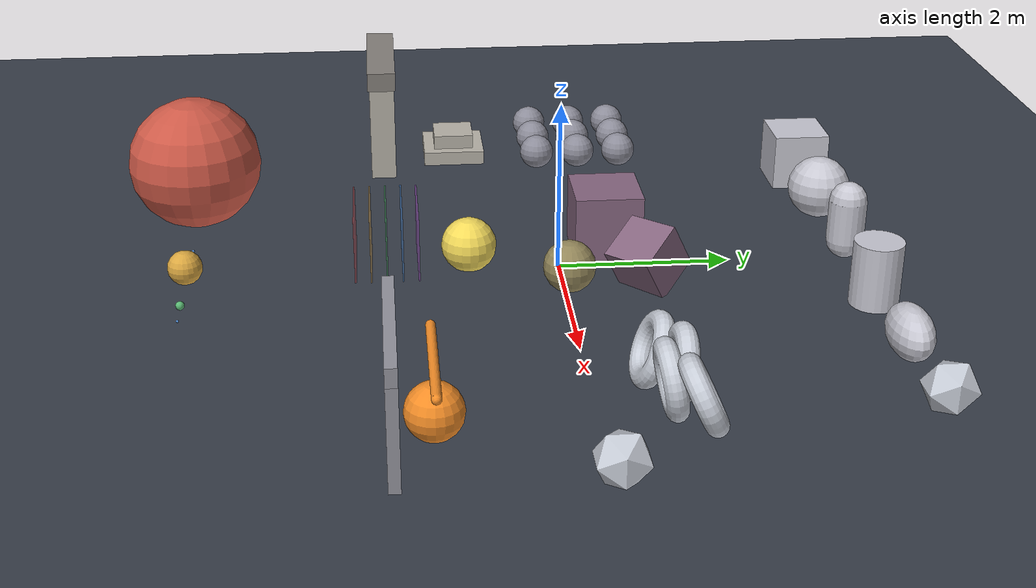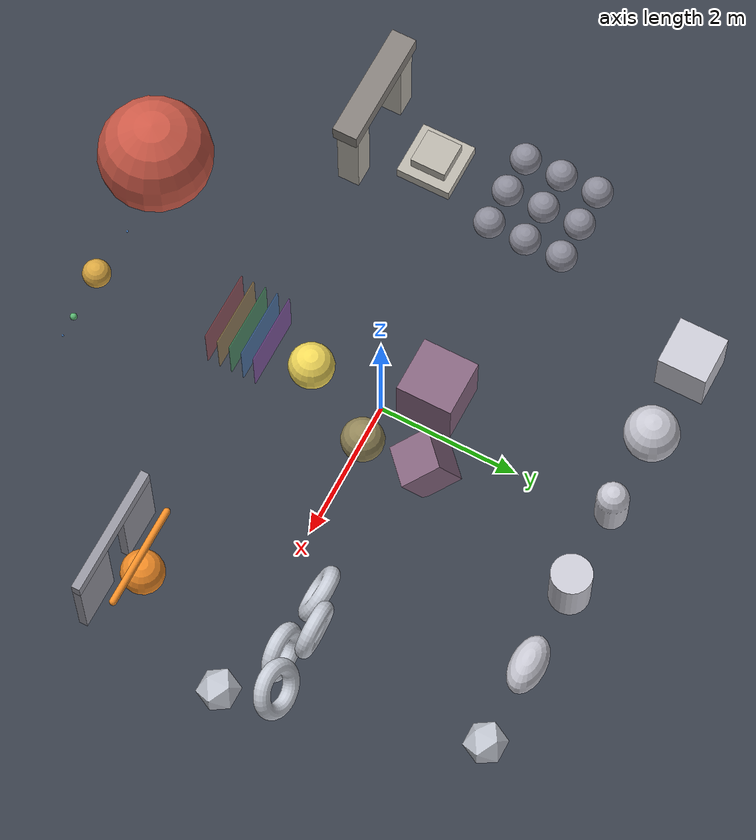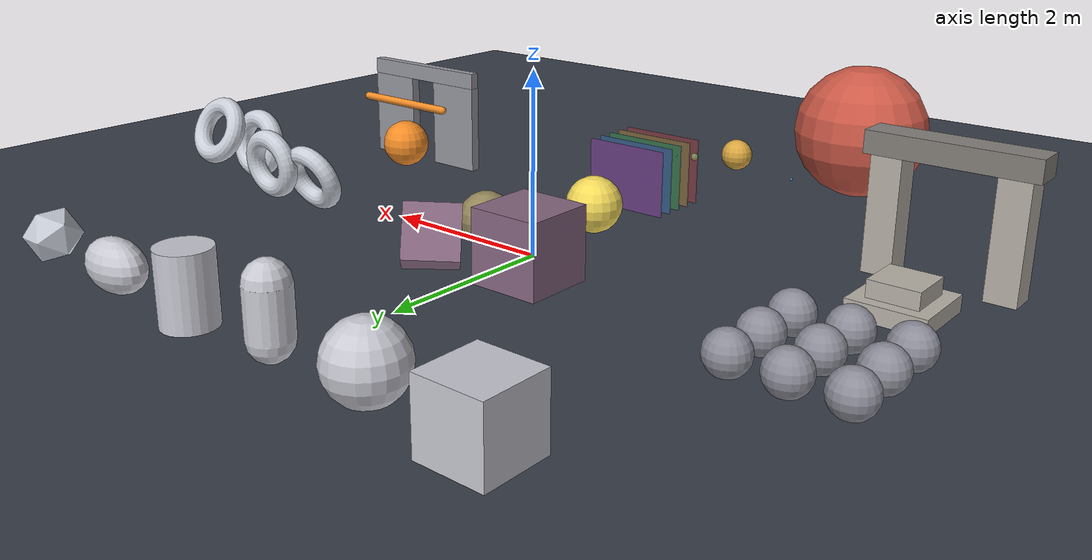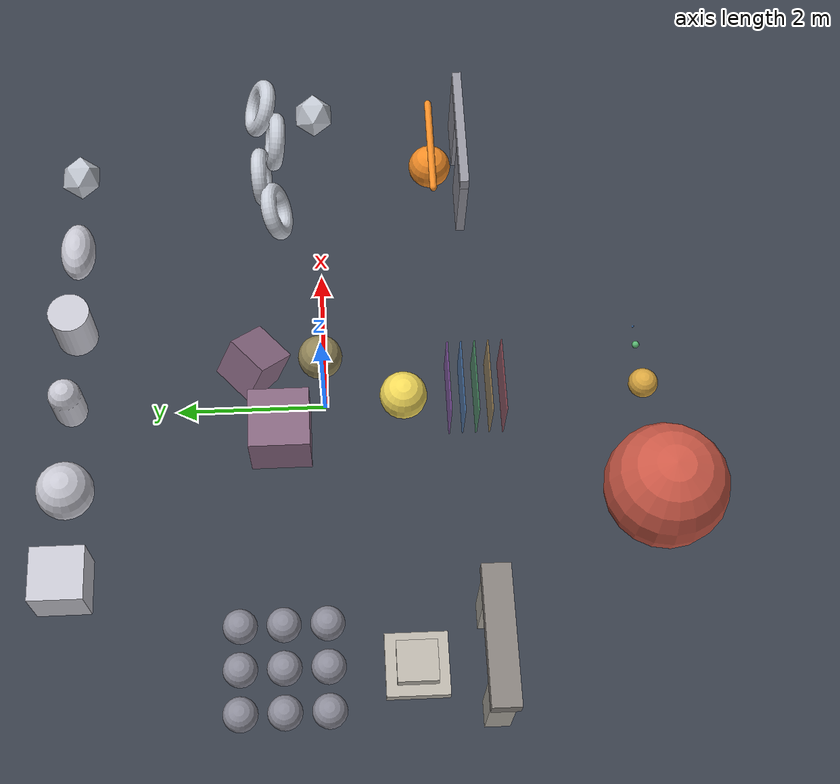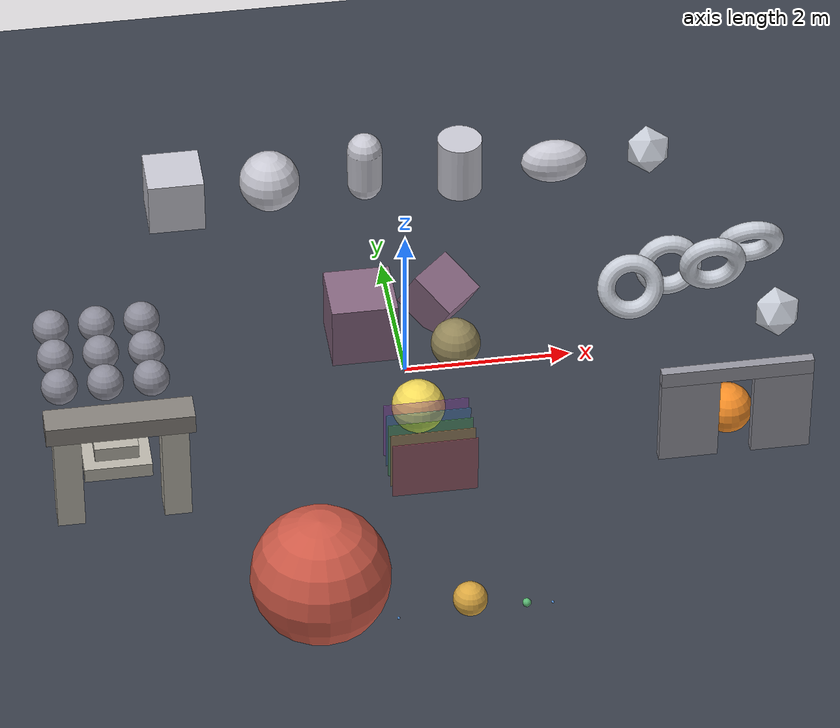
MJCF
<mujoco model="showcase">
  <compiler angle="degree" autolimits="true"/>

  <visual>
    <headlight ambient="0.20 0.20 0.20" diffuse="0.35 0.35 0.35" specular="0.4 0.4 0.4"/>
    <quality shadowsize="4096" numslices="32" numstacks="16" numquads="4"/>
    <map znear="0.01" zfar="120" shadowclip="1.5" shadowscale="0.5"/>
  </visual>

  <asset>
    <texture name="grid" type="2d" builtin="checker" width="512" height="512"
             rgb1="0.17 0.19 0.23" rgb2="0.26 0.29 0.34"/>
    <material name="grid" texture="grid" texrepeat="1 1" texuniform="true" reflectance="0.1"/>

    <texture name="cubetex" type="cube" builtin="checker" width="256" height="256"
             rgb1="0.85 0.35 0.25" rgb2="0.20 0.45 0.75" mark="edge" markrgb="0.95 0.95 0.95"/>
    <material name="cube_mat" texture="cubetex" texuniform="false" specular="0.4"
              shininess="0.5"/>
    <texture name="flat2d" type="2d" builtin="checker" width="256" height="256"
             rgb1="0.90 0.75 0.30" rgb2="0.25 0.30 0.40"/>
    <material name="flat2d" texture="flat2d" texrepeat="4 2" specular="0.3" shininess="0.4"/>

    <material name="pale" rgba="0.78 0.78 0.82 1" specular="0.4" shininess="0.5"/>
    <material name="chrome" rgba="0.78 0.80 0.84 1" specular="0.95" shininess="0.92"/>
    <material name="stone" rgba="0.72 0.70 0.66 1" specular="0.1" shininess="0.2"/>
    <material name="stone_dark" rgba="0.52 0.50 0.48 1" specular="0.1" shininess="0.2"/>
    <material name="wall" rgba="0.58 0.58 0.62 1" specular="0.15" shininess="0.25"/>
    <material name="hidden" rgba="0.95 0.55 0.15 1" specular="0.6" shininess="0.7"/>

    <material name="b_spec_0" rgba="0.55 0.55 0.60 1" specular="0.0" shininess="0.5"/>
    <material name="b_spec_1" rgba="0.55 0.55 0.60 1" specular="0.5" shininess="0.5"/>
    <material name="b_spec_2" rgba="0.55 0.55 0.60 1" specular="1.0" shininess="0.5"/>
    <material name="b_shin_0" rgba="0.55 0.55 0.60 1" specular="1.0" shininess="0.05"/>
    <material name="b_shin_1" rgba="0.55 0.55 0.60 1" specular="1.0" shininess="0.5"/>
    <material name="b_shin_2" rgba="0.55 0.55 0.60 1" specular="1.0" shininess="1.0"/>
    <material name="b_emit_0" rgba="0.55 0.55 0.60 1" specular="0.2" emission="0.0"/>
    <material name="b_emit_1" rgba="0.55 0.55 0.60 1" specular="0.2" emission="0.5"/>
    <material name="b_emit_2" rgba="0.55 0.55 0.60 1" specular="0.2" emission="1.0"/>

    <material name="f_0" rgba="0.90 0.20 0.20 0.35" specular="0.4" shininess="0.6"/>
    <material name="f_1" rgba="0.95 0.65 0.15 0.35" specular="0.4" shininess="0.6"/>
    <material name="f_2" rgba="0.20 0.80 0.30 0.35" specular="0.4" shininess="0.6"/>
    <material name="f_3" rgba="0.20 0.55 0.95 0.35" specular="0.4" shininess="0.6"/>
    <material name="f_4" rgba="0.75 0.25 0.90 0.35" specular="0.4" shininess="0.6"/>
    <material name="f_solid" rgba="0.95 0.85 0.35 1" specular="0.5" shininess="0.6"/>

    <material name="h_0" rgba="0.80 0.35 0.28 1" specular="0.5" shininess="0.6"/>
    <material name="h_1" rgba="0.85 0.65 0.25 1" specular="0.5" shininess="0.6"/>
    <material name="h_2" rgba="0.35 0.72 0.45 1" specular="0.5" shininess="0.6"/>
    <material name="h_3" rgba="0.35 0.60 0.90 1" specular="0.7" shininess="0.8"/>

    <mesh name="torus"
          vertex="0.41000 0.00000 0.00000  0.40163 0.00000 0.04210  0.37778 0.00000 0.07778  0.34210 0.00000 0.10163  0.30000 0.00000 0.11000  0.25790 0.00000 0.10163
            0.22222 0.00000 0.07778  0.19837 0.00000 0.04210  0.19000 0.00000 0.00000  0.19837 0.00000 -0.04210  0.22222 0.00000 -0.07778  0.25790 0.00000 -0.10163
            0.30000 0.00000 -0.11000  0.34210 0.00000 -0.10163  0.37778 0.00000 -0.07778  0.40163 0.00000 -0.04210  0.40212 0.07999 0.00000  0.39391 0.07835 0.04210
            0.37052 0.07370 0.07778  0.33552 0.06674 0.10163  0.29424 0.05853 0.11000  0.25295 0.05031 0.10163  0.21795 0.04335 0.07778  0.19456 0.03870 0.04210
            0.18635 0.03707 0.00000  0.19456 0.03870 -0.04210  0.21795 0.04335 -0.07778  0.25295 0.05031 -0.10163  0.29424 0.05853 -0.11000  0.33552 0.06674 -0.10163
            0.37052 0.07370 -0.07778  0.39391 0.07835 -0.04210  0.37879 0.15690 0.00000  0.37105 0.15370 0.04210  0.34902 0.14457 0.07778  0.31605 0.13091 0.10163
            0.27716 0.11481 0.11000  0.23827 0.09870 0.10163  0.20530 0.08504 0.07778  0.18327 0.07591 0.04210  0.17554 0.07271 0.00000  0.18327 0.07591 -0.04210
            0.20530 0.08504 -0.07778  0.23827 0.09870 -0.10163  0.27716 0.11481 -0.11000  0.31605 0.13091 -0.10163  0.34902 0.14457 -0.07778  0.37105 0.15370 -0.04210
            0.34090 0.22778 0.00000  0.33394 0.22313 0.04210  0.31411 0.20988 0.07778  0.28444 0.19006 0.10163  0.24944 0.16667 0.11000  0.21444 0.14328 0.10163
            0.18477 0.12346 0.07778  0.16494 0.11021 0.04210  0.15798 0.10556 0.00000  0.16494 0.11021 -0.04210  0.18477 0.12346 -0.07778  0.21444 0.14328 -0.10163
            0.24944 0.16667 -0.11000  0.28444 0.19006 -0.10163  0.31411 0.20988 -0.07778  0.33394 0.22313 -0.04210  0.28991 0.28991 0.00000  0.28399 0.28399 0.04210
            0.26713 0.26713 0.07778  0.24190 0.24190 0.10163  0.21213 0.21213 0.11000  0.18237 0.18237 0.10163  0.15713 0.15713 0.07778  0.14027 0.14027 0.04210
            0.13435 0.13435 0.00000  0.14027 0.14027 -0.04210  0.15713 0.15713 -0.07778  0.18237 0.18237 -0.10163  0.21213 0.21213 -0.11000  0.24190 0.24190 -0.10163
            0.26713 0.26713 -0.07778  0.28399 0.28399 -0.04210  0.22778 0.34090 0.00000  0.22313 0.33394 0.04210  0.20988 0.31411 0.07778  0.19006 0.28444 0.10163
            0.16667 0.24944 0.11000  0.14328 0.21444 0.10163  0.12346 0.18477 0.07778  0.11021 0.16494 0.04210  0.10556 0.15798 0.00000  0.11021 0.16494 -0.04210
            0.12346 0.18477 -0.07778  0.14328 0.21444 -0.10163  0.16667 0.24944 -0.11000  0.19006 0.28444 -0.10163  0.20988 0.31411 -0.07778  0.22313 0.33394 -0.04210
            0.15690 0.37879 0.00000  0.15370 0.37105 0.04210  0.14457 0.34902 0.07778  0.13091 0.31605 0.10163  0.11481 0.27716 0.11000  0.09870 0.23827 0.10163
            0.08504 0.20530 0.07778  0.07591 0.18327 0.04210  0.07271 0.17554 0.00000  0.07591 0.18327 -0.04210  0.08504 0.20530 -0.07778  0.09870 0.23827 -0.10163
            0.11481 0.27716 -0.11000  0.13091 0.31605 -0.10163  0.14457 0.34902 -0.07778  0.15370 0.37105 -0.04210  0.07999 0.40212 0.00000  0.07835 0.39391 0.04210
            0.07370 0.37052 0.07778  0.06674 0.33552 0.10163  0.05853 0.29424 0.11000  0.05031 0.25295 0.10163  0.04335 0.21795 0.07778  0.03870 0.19456 0.04210
            0.03707 0.18635 0.00000  0.03870 0.19456 -0.04210  0.04335 0.21795 -0.07778  0.05031 0.25295 -0.10163  0.05853 0.29424 -0.11000  0.06674 0.33552 -0.10163
            0.07370 0.37052 -0.07778  0.07835 0.39391 -0.04210  0.00000 0.41000 0.00000  0.00000 0.40163 0.04210  0.00000 0.37778 0.07778  0.00000 0.34210 0.10163
            0.00000 0.30000 0.11000  0.00000 0.25790 0.10163  0.00000 0.22222 0.07778  0.00000 0.19837 0.04210  0.00000 0.19000 0.00000  0.00000 0.19837 -0.04210
            0.00000 0.22222 -0.07778  0.00000 0.25790 -0.10163  0.00000 0.30000 -0.11000  0.00000 0.34210 -0.10163  0.00000 0.37778 -0.07778  0.00000 0.40163 -0.04210
            -0.07999 0.40212 0.00000  -0.07835 0.39391 0.04210  -0.07370 0.37052 0.07778  -0.06674 0.33552 0.10163  -0.05853 0.29424 0.11000  -0.05031 0.25295 0.10163
            -0.04335 0.21795 0.07778  -0.03870 0.19456 0.04210  -0.03707 0.18635 0.00000  -0.03870 0.19456 -0.04210  -0.04335 0.21795 -0.07778  -0.05031 0.25295 -0.10163
            -0.05853 0.29424 -0.11000  -0.06674 0.33552 -0.10163  -0.07370 0.37052 -0.07778  -0.07835 0.39391 -0.04210  -0.15690 0.37879 0.00000  -0.15370 0.37105 0.04210
            -0.14457 0.34902 0.07778  -0.13091 0.31605 0.10163  -0.11481 0.27716 0.11000  -0.09870 0.23827 0.10163  -0.08504 0.20530 0.07778  -0.07591 0.18327 0.04210
            -0.07271 0.17554 0.00000  -0.07591 0.18327 -0.04210  -0.08504 0.20530 -0.07778  -0.09870 0.23827 -0.10163  -0.11481 0.27716 -0.11000  -0.13091 0.31605 -0.10163
            -0.14457 0.34902 -0.07778  -0.15370 0.37105 -0.04210  -0.22778 0.34090 0.00000  -0.22313 0.33394 0.04210  -0.20988 0.31411 0.07778  -0.19006 0.28444 0.10163
            -0.16667 0.24944 0.11000  -0.14328 0.21444 0.10163  -0.12346 0.18477 0.07778  -0.11021 0.16494 0.04210  -0.10556 0.15798 0.00000  -0.11021 0.16494 -0.04210
            -0.12346 0.18477 -0.07778  -0.14328 0.21444 -0.10163  -0.16667 0.24944 -0.11000  -0.19006 0.28444 -0.10163  -0.20988 0.31411 -0.07778  -0.22313 0.33394 -0.04210
            -0.28991 0.28991 0.00000  -0.28399 0.28399 0.04210  -0.26713 0.26713 0.07778  -0.24190 0.24190 0.10163  -0.21213 0.21213 0.11000  -0.18237 0.18237 0.10163
            -0.15713 0.15713 0.07778  -0.14027 0.14027 0.04210  -0.13435 0.13435 0.00000  -0.14027 0.14027 -0.04210  -0.15713 0.15713 -0.07778  -0.18237 0.18237 -0.10163
            -0.21213 0.21213 -0.11000  -0.24190 0.24190 -0.10163  -0.26713 0.26713 -0.07778  -0.28399 0.28399 -0.04210  -0.34090 0.22778 0.00000  -0.33394 0.22313 0.04210
            -0.31411 0.20988 0.07778  -0.28444 0.19006 0.10163  -0.24944 0.16667 0.11000  -0.21444 0.14328 0.10163  -0.18477 0.12346 0.07778  -0.16494 0.11021 0.04210
            -0.15798 0.10556 0.00000  -0.16494 0.11021 -0.04210  -0.18477 0.12346 -0.07778  -0.21444 0.14328 -0.10163  -0.24944 0.16667 -0.11000  -0.28444 0.19006 -0.10163
            -0.31411 0.20988 -0.07778  -0.33394 0.22313 -0.04210  -0.37879 0.15690 0.00000  -0.37105 0.15370 0.04210  -0.34902 0.14457 0.07778  -0.31605 0.13091 0.10163
            -0.27716 0.11481 0.11000  -0.23827 0.09870 0.10163  -0.20530 0.08504 0.07778  -0.18327 0.07591 0.04210  -0.17554 0.07271 0.00000  -0.18327 0.07591 -0.04210
            -0.20530 0.08504 -0.07778  -0.23827 0.09870 -0.10163  -0.27716 0.11481 -0.11000  -0.31605 0.13091 -0.10163  -0.34902 0.14457 -0.07778  -0.37105 0.15370 -0.04210
            -0.40212 0.07999 0.00000  -0.39391 0.07835 0.04210  -0.37052 0.07370 0.07778  -0.33552 0.06674 0.10163  -0.29424 0.05853 0.11000  -0.25295 0.05031 0.10163
            -0.21795 0.04335 0.07778  -0.19456 0.03870 0.04210  -0.18635 0.03707 0.00000  -0.19456 0.03870 -0.04210  -0.21795 0.04335 -0.07778  -0.25295 0.05031 -0.10163
            -0.29424 0.05853 -0.11000  -0.33552 0.06674 -0.10163  -0.37052 0.07370 -0.07778  -0.39391 0.07835 -0.04210  -0.41000 0.00000 0.00000  -0.40163 0.00000 0.04210
            -0.37778 0.00000 0.07778  -0.34210 0.00000 0.10163  -0.30000 0.00000 0.11000  -0.25790 0.00000 0.10163  -0.22222 0.00000 0.07778  -0.19837 0.00000 0.04210
            -0.19000 0.00000 0.00000  -0.19837 0.00000 -0.04210  -0.22222 0.00000 -0.07778  -0.25790 0.00000 -0.10163  -0.30000 0.00000 -0.11000  -0.34210 0.00000 -0.10163
            -0.37778 0.00000 -0.07778  -0.40163 0.00000 -0.04210  -0.40212 -0.07999 0.00000  -0.39391 -0.07835 0.04210  -0.37052 -0.07370 0.07778  -0.33552 -0.06674 0.10163
            -0.29424 -0.05853 0.11000  -0.25295 -0.05031 0.10163  -0.21795 -0.04335 0.07778  -0.19456 -0.03870 0.04210  -0.18635 -0.03707 0.00000  -0.19456 -0.03870 -0.04210
            -0.21795 -0.04335 -0.07778  -0.25295 -0.05031 -0.10163  -0.29424 -0.05853 -0.11000  -0.33552 -0.06674 -0.10163  -0.37052 -0.07370 -0.07778  -0.39391 -0.07835 -0.04210
            -0.37879 -0.15690 0.00000  -0.37105 -0.15370 0.04210  -0.34902 -0.14457 0.07778  -0.31605 -0.13091 0.10163  -0.27716 -0.11481 0.11000  -0.23827 -0.09870 0.10163
            -0.20530 -0.08504 0.07778  -0.18327 -0.07591 0.04210  -0.17554 -0.07271 0.00000  -0.18327 -0.07591 -0.04210  -0.20530 -0.08504 -0.07778  -0.23827 -0.09870 -0.10163
            -0.27716 -0.11481 -0.11000  -0.31605 -0.13091 -0.10163  -0.34902 -0.14457 -0.07778  -0.37105 -0.15370 -0.04210  -0.34090 -0.22778 0.00000  -0.33394 -0.22313 0.04210
            -0.31411 -0.20988 0.07778  -0.28444 -0.19006 0.10163  -0.24944 -0.16667 0.11000  -0.21444 -0.14328 0.10163  -0.18477 -0.12346 0.07778  -0.16494 -0.11021 0.04210
            -0.15798 -0.10556 0.00000  -0.16494 -0.11021 -0.04210  -0.18477 -0.12346 -0.07778  -0.21444 -0.14328 -0.10163  -0.24944 -0.16667 -0.11000  -0.28444 -0.19006 -0.10163
            -0.31411 -0.20988 -0.07778  -0.33394 -0.22313 -0.04210  -0.28991 -0.28991 0.00000  -0.28399 -0.28399 0.04210  -0.26713 -0.26713 0.07778  -0.24190 -0.24190 0.10163
            -0.21213 -0.21213 0.11000  -0.18237 -0.18237 0.10163  -0.15713 -0.15713 0.07778  -0.14027 -0.14027 0.04210  -0.13435 -0.13435 0.00000  -0.14027 -0.14027 -0.04210
            -0.15713 -0.15713 -0.07778  -0.18237 -0.18237 -0.10163  -0.21213 -0.21213 -0.11000  -0.24190 -0.24190 -0.10163  -0.26713 -0.26713 -0.07778  -0.28399 -0.28399 -0.04210
            -0.22778 -0.34090 0.00000  -0.22313 -0.33394 0.04210  -0.20988 -0.31411 0.07778  -0.19006 -0.28444 0.10163  -0.16667 -0.24944 0.11000  -0.14328 -0.21444 0.10163
            -0.12346 -0.18477 0.07778  -0.11021 -0.16494 0.04210  -0.10556 -0.15798 0.00000  -0.11021 -0.16494 -0.04210  -0.12346 -0.18477 -0.07778  -0.14328 -0.21444 -0.10163
            -0.16667 -0.24944 -0.11000  -0.19006 -0.28444 -0.10163  -0.20988 -0.31411 -0.07778  -0.22313 -0.33394 -0.04210  -0.15690 -0.37879 0.00000  -0.15370 -0.37105 0.04210
            -0.14457 -0.34902 0.07778  -0.13091 -0.31605 0.10163  -0.11481 -0.27716 0.11000  -0.09870 -0.23827 0.10163  -0.08504 -0.20530 0.07778  -0.07591 -0.18327 0.04210
            -0.07271 -0.17554 0.00000  -0.07591 -0.18327 -0.04210  -0.08504 -0.20530 -0.07778  -0.09870 -0.23827 -0.10163  -0.11481 -0.27716 -0.11000  -0.13091 -0.31605 -0.10163
            -0.14457 -0.34902 -0.07778  -0.15370 -0.37105 -0.04210  -0.07999 -0.40212 0.00000  -0.07835 -0.39391 0.04210  -0.07370 -0.37052 0.07778  -0.06674 -0.33552 0.10163
            -0.05853 -0.29424 0.11000  -0.05031 -0.25295 0.10163  -0.04335 -0.21795 0.07778  -0.03870 -0.19456 0.04210  -0.03707 -0.18635 0.00000  -0.03870 -0.19456 -0.04210
            -0.04335 -0.21795 -0.07778  -0.05031 -0.25295 -0.10163  -0.05853 -0.29424 -0.11000  -0.06674 -0.33552 -0.10163  -0.07370 -0.37052 -0.07778  -0.07835 -0.39391 -0.04210
            -0.00000 -0.41000 0.00000  -0.00000 -0.40163 0.04210  -0.00000 -0.37778 0.07778  -0.00000 -0.34210 0.10163  -0.00000 -0.30000 0.11000  -0.00000 -0.25790 0.10163
            -0.00000 -0.22222 0.07778  -0.00000 -0.19837 0.04210  -0.00000 -0.19000 0.00000  -0.00000 -0.19837 -0.04210  -0.00000 -0.22222 -0.07778  -0.00000 -0.25790 -0.10163
            -0.00000 -0.30000 -0.11000  -0.00000 -0.34210 -0.10163  -0.00000 -0.37778 -0.07778  -0.00000 -0.40163 -0.04210  0.07999 -0.40212 0.00000  0.07835 -0.39391 0.04210
            0.07370 -0.37052 0.07778  0.06674 -0.33552 0.10163  0.05853 -0.29424 0.11000  0.05031 -0.25295 0.10163  0.04335 -0.21795 0.07778  0.03870 -0.19456 0.04210
            0.03707 -0.18635 0.00000  0.03870 -0.19456 -0.04210  0.04335 -0.21795 -0.07778  0.05031 -0.25295 -0.10163  0.05853 -0.29424 -0.11000  0.06674 -0.33552 -0.10163
            0.07370 -0.37052 -0.07778  0.07835 -0.39391 -0.04210  0.15690 -0.37879 0.00000  0.15370 -0.37105 0.04210  0.14457 -0.34902 0.07778  0.13091 -0.31605 0.10163
            0.11481 -0.27716 0.11000  0.09870 -0.23827 0.10163  0.08504 -0.20530 0.07778  0.07591 -0.18327 0.04210  0.07271 -0.17554 0.00000  0.07591 -0.18327 -0.04210
            0.08504 -0.20530 -0.07778  0.09870 -0.23827 -0.10163  0.11481 -0.27716 -0.11000  0.13091 -0.31605 -0.10163  0.14457 -0.34902 -0.07778  0.15370 -0.37105 -0.04210
            0.22778 -0.34090 0.00000  0.22313 -0.33394 0.04210  0.20988 -0.31411 0.07778  0.19006 -0.28444 0.10163  0.16667 -0.24944 0.11000  0.14328 -0.21444 0.10163
            0.12346 -0.18477 0.07778  0.11021 -0.16494 0.04210  0.10556 -0.15798 0.00000  0.11021 -0.16494 -0.04210  0.12346 -0.18477 -0.07778  0.14328 -0.21444 -0.10163
            0.16667 -0.24944 -0.11000  0.19006 -0.28444 -0.10163  0.20988 -0.31411 -0.07778  0.22313 -0.33394 -0.04210  0.28991 -0.28991 0.00000  0.28399 -0.28399 0.04210
            0.26713 -0.26713 0.07778  0.24190 -0.24190 0.10163  0.21213 -0.21213 0.11000  0.18237 -0.18237 0.10163  0.15713 -0.15713 0.07778  0.14027 -0.14027 0.04210
            0.13435 -0.13435 0.00000  0.14027 -0.14027 -0.04210  0.15713 -0.15713 -0.07778  0.18237 -0.18237 -0.10163  0.21213 -0.21213 -0.11000  0.24190 -0.24190 -0.10163
            0.26713 -0.26713 -0.07778  0.28399 -0.28399 -0.04210  0.34090 -0.22778 0.00000  0.33394 -0.22313 0.04210  0.31411 -0.20988 0.07778  0.28444 -0.19006 0.10163
            0.24944 -0.16667 0.11000  0.21444 -0.14328 0.10163  0.18477 -0.12346 0.07778  0.16494 -0.11021 0.04210  0.15798 -0.10556 0.00000  0.16494 -0.11021 -0.04210
            0.18477 -0.12346 -0.07778  0.21444 -0.14328 -0.10163  0.24944 -0.16667 -0.11000  0.28444 -0.19006 -0.10163  0.31411 -0.20988 -0.07778  0.33394 -0.22313 -0.04210
            0.37879 -0.15690 0.00000  0.37105 -0.15370 0.04210  0.34902 -0.14457 0.07778  0.31605 -0.13091 0.10163  0.27716 -0.11481 0.11000  0.23827 -0.09870 0.10163
            0.20530 -0.08504 0.07778  0.18327 -0.07591 0.04210  0.17554 -0.07271 0.00000  0.18327 -0.07591 -0.04210  0.20530 -0.08504 -0.07778  0.23827 -0.09870 -0.10163
            0.27716 -0.11481 -0.11000  0.31605 -0.13091 -0.10163  0.34902 -0.14457 -0.07778  0.37105 -0.15370 -0.04210  0.40212 -0.07999 0.00000  0.39391 -0.07835 0.04210
            0.37052 -0.07370 0.07778  0.33552 -0.06674 0.10163  0.29424 -0.05853 0.11000  0.25295 -0.05031 0.10163  0.21795 -0.04335 0.07778  0.19456 -0.03870 0.04210
            0.18635 -0.03707 0.00000  0.19456 -0.03870 -0.04210  0.21795 -0.04335 -0.07778  0.25295 -0.05031 -0.10163  0.29424 -0.05853 -0.11000  0.33552 -0.06674 -0.10163
            0.37052 -0.07370 -0.07778  0.39391 -0.07835 -0.04210"
          face="0 16 17  0 17 1  1 17 18  1 18 2  2 18 19  2 19 3  3 19 20  3 20 4  4 20 21  4 21 5
            5 21 22  5 22 6  6 22 23  6 23 7  7 23 24  7 24 8  8 24 25  8 25 9  9 25 26  9 26 10
            10 26 27  10 27 11  11 27 28  11 28 12  12 28 29  12 29 13  13 29 30  13 30 14  14 30 31  14 31 15
            15 31 16  15 16 0  16 32 33  16 33 17  17 33 34  17 34 18  18 34 35  18 35 19  19 35 36  19 36 20
            20 36 37  20 37 21  21 37 38  21 38 22  22 38 39  22 39 23  23 39 40  23 40 24  24 40 41  24 41 25
            25 41 42  25 42 26  26 42 43  26 43 27  27 43 44  27 44 28  28 44 45  28 45 29  29 45 46  29 46 30
            30 46 47  30 47 31  31 47 32  31 32 16  32 48 49  32 49 33  33 49 50  33 50 34  34 50 51  34 51 35
            35 51 52  35 52 36  36 52 53  36 53 37  37 53 54  37 54 38  38 54 55  38 55 39  39 55 56  39 56 40
            40 56 57  40 57 41  41 57 58  41 58 42  42 58 59  42 59 43  43 59 60  43 60 44  44 60 61  44 61 45
            45 61 62  45 62 46  46 62 63  46 63 47  47 63 48  47 48 32  48 64 65  48 65 49  49 65 66  49 66 50
            50 66 67  50 67 51  51 67 68  51 68 52  52 68 69  52 69 53  53 69 70  53 70 54  54 70 71  54 71 55
            55 71 72  55 72 56  56 72 73  56 73 57  57 73 74  57 74 58  58 74 75  58 75 59  59 75 76  59 76 60
            60 76 77  60 77 61  61 77 78  61 78 62  62 78 79  62 79 63  63 79 64  63 64 48  64 80 81  64 81 65
            65 81 82  65 82 66  66 82 83  66 83 67  67 83 84  67 84 68  68 84 85  68 85 69  69 85 86  69 86 70
            70 86 87  70 87 71  71 87 88  71 88 72  72 88 89  72 89 73  73 89 90  73 90 74  74 90 91  74 91 75
            75 91 92  75 92 76  76 92 93  76 93 77  77 93 94  77 94 78  78 94 95  78 95 79  79 95 80  79 80 64
            80 96 97  80 97 81  81 97 98  81 98 82  82 98 99  82 99 83  83 99 100  83 100 84  84 100 101  84 101 85
            85 101 102  85 102 86  86 102 103  86 103 87  87 103 104  87 104 88  88 104 105  88 105 89  89 105 106  89 106 90
            90 106 107  90 107 91  91 107 108  91 108 92  92 108 109  92 109 93  93 109 110  93 110 94  94 110 111  94 111 95
            95 111 96  95 96 80  96 112 113  96 113 97  97 113 114  97 114 98  98 114 115  98 115 99  99 115 116  99 116 100
            100 116 117  100 117 101  101 117 118  101 118 102  102 118 119  102 119 103  103 119 120  103 120 104  104 120 121  104 121 105
            105 121 122  105 122 106  106 122 123  106 123 107  107 123 124  107 124 108  108 124 125  108 125 109  109 125 126  109 126 110
            110 126 127  110 127 111  111 127 112  111 112 96  112 128 129  112 129 113  113 129 130  113 130 114  114 130 131  114 131 115
            115 131 132  115 132 116  116 132 133  116 133 117  117 133 134  117 134 118  118 134 135  118 135 119  119 135 136  119 136 120
            120 136 137  120 137 121  121 137 138  121 138 122  122 138 139  122 139 123  123 139 140  123 140 124  124 140 141  124 141 125
            125 141 142  125 142 126  126 142 143  126 143 127  127 143 128  127 128 112  128 144 145  128 145 129  129 145 146  129 146 130
            130 146 147  130 147 131  131 147 148  131 148 132  132 148 149  132 149 133  133 149 150  133 150 134  134 150 151  134 151 135
            135 151 152  135 152 136  136 152 153  136 153 137  137 153 154  137 154 138  138 154 155  138 155 139  139 155 156  139 156 140
            140 156 157  140 157 141  141 157 158  141 158 142  142 158 159  142 159 143  143 159 144  143 144 128  144 160 161  144 161 145
            145 161 162  145 162 146  146 162 163  146 163 147  147 163 164  147 164 148  148 164 165  148 165 149  149 165 166  149 166 150
            150 166 167  150 167 151  151 167 168  151 168 152  152 168 169  152 169 153  153 169 170  153 170 154  154 170 171  154 171 155
            155 171 172  155 172 156  156 172 173  156 173 157  157 173 174  157 174 158  158 174 175  158 175 159  159 175 160  159 160 144
            160 176 177  160 177 161  161 177 178  161 178 162  162 178 179  162 179 163  163 179 180  163 180 164  164 180 181  164 181 165
            165 181 182  165 182 166  166 182 183  166 183 167  167 183 184  167 184 168  168 184 185  168 185 169  169 185 186  169 186 170
            170 186 187  170 187 171  171 187 188  171 188 172  172 188 189  172 189 173  173 189 190  173 190 174  174 190 191  174 191 175
            175 191 176  175 176 160  176 192 193  176 193 177  177 193 194  177 194 178  178 194 195  178 195 179  179 195 196  179 196 180
            180 196 197  180 197 181  181 197 198  181 198 182  182 198 199  182 199 183  183 199 200  183 200 184  184 200 201  184 201 185
            185 201 202  185 202 186  186 202 203  186 203 187  187 203 204  187 204 188  188 204 205  188 205 189  189 205 206  189 206 190
            190 206 207  190 207 191  191 207 192  191 192 176  192 208 209  192 209 193  193 209 210  193 210 194  194 210 211  194 211 195
            195 211 212  195 212 196  196 212 213  196 213 197  197 213 214  197 214 198  198 214 215  198 215 199  199 215 216  199 216 200
            200 216 217  200 217 201  201 217 218  201 218 202  202 218 219  202 219 203  203 219 220  203 220 204  204 220 221  204 221 205
            205 221 222  205 222 206  206 222 223  206 223 207  207 223 208  207 208 192  208 224 225  208 225 209  209 225 226  209 226 210
            210 226 227  210 227 211  211 227 228  211 228 212  212 228 229  212 229 213  213 229 230  213 230 214  214 230 231  214 231 215
            215 231 232  215 232 216  216 232 233  216 233 217  217 233 234  217 234 218  218 234 235  218 235 219  219 235 236  219 236 220
            220 236 237  220 237 221  221 237 238  221 238 222  222 238 239  222 239 223  223 239 224  223 224 208  224 240 241  224 241 225
            225 241 242  225 242 226  226 242 243  226 243 227  227 243 244  227 244 228  228 244 245  228 245 229  229 245 246  229 246 230
            230 246 247  230 247 231  231 247 248  231 248 232  232 248 249  232 249 233  233 249 250  233 250 234  234 250 251  234 251 235
            235 251 252  235 252 236  236 252 253  236 253 237  237 253 254  237 254 238  238 254 255  238 255 239  239 255 240  239 240 224
            240 256 257  240 257 241  241 257 258  241 258 242  242 258 259  242 259 243  243 259 260  243 260 244  244 260 261  244 261 245
            245 261 262  245 262 246  246 262 263  246 263 247  247 263 264  247 264 248  248 264 265  248 265 249  249 265 266  249 266 250
            250 266 267  250 267 251  251 267 268  251 268 252  252 268 269  252 269 253  253 269 270  253 270 254  254 270 271  254 271 255
            255 271 256  255 256 240  256 272 273  256 273 257  257 273 274  257 274 258  258 274 275  258 275 259  259 275 276  259 276 260
            260 276 277  260 277 261  261 277 278  261 278 262  262 278 279  262 279 263  263 279 280  263 280 264  264 280 281  264 281 265
            265 281 282  265 282 266  266 282 283  266 283 267  267 283 284  267 284 268  268 284 285  268 285 269  269 285 286  269 286 270
            270 286 287  270 287 271  271 287 272  271 272 256  272 288 289  272 289 273  273 289 290  273 290 274  274 290 291  274 291 275
            275 291 292  275 292 276  276 292 293  276 293 277  277 293 294  277 294 278  278 294 295  278 295 279  279 295 296  279 296 280
            280 296 297  280 297 281  281 297 298  281 298 282  282 298 299  282 299 283  283 299 300  283 300 284  284 300 301  284 301 285
            285 301 302  285 302 286  286 302 303  286 303 287  287 303 288  287 288 272  288 304 305  288 305 289  289 305 306  289 306 290
            290 306 307  290 307 291  291 307 308  291 308 292  292 308 309  292 309 293  293 309 310  293 310 294  294 310 311  294 311 295
            295 311 312  295 312 296  296 312 313  296 313 297  297 313 314  297 314 298  298 314 315  298 315 299  299 315 316  299 316 300
            300 316 317  300 317 301  301 317 318  301 318 302  302 318 319  302 319 303  303 319 304  303 304 288  304 320 321  304 321 305
            305 321 322  305 322 306  306 322 323  306 323 307  307 323 324  307 324 308  308 324 325  308 325 309  309 325 326  309 326 310
            310 326 327  310 327 311  311 327 328  311 328 312  312 328 329  312 329 313  313 329 330  313 330 314  314 330 331  314 331 315
            315 331 332  315 332 316  316 332 333  316 333 317  317 333 334  317 334 318  318 334 335  318 335 319  319 335 320  319 320 304
            320 336 337  320 337 321  321 337 338  321 338 322  322 338 339  322 339 323  323 339 340  323 340 324  324 340 341  324 341 325
            325 341 342  325 342 326  326 342 343  326 343 327  327 343 344  327 344 328  328 344 345  328 345 329  329 345 346  329 346 330
            330 346 347  330 347 331  331 347 348  331 348 332  332 348 349  332 349 333  333 349 350  333 350 334  334 350 351  334 351 335
            335 351 336  335 336 320  336 352 353  336 353 337  337 353 354  337 354 338  338 354 355  338 355 339  339 355 356  339 356 340
            340 356 357  340 357 341  341 357 358  341 358 342  342 358 359  342 359 343  343 359 360  343 360 344  344 360 361  344 361 345
            345 361 362  345 362 346  346 362 363  346 363 347  347 363 364  347 364 348  348 364 365  348 365 349  349 365 366  349 366 350
            350 366 367  350 367 351  351 367 352  351 352 336  352 368 369  352 369 353  353 369 370  353 370 354  354 370 371  354 371 355
            355 371 372  355 372 356  356 372 373  356 373 357  357 373 374  357 374 358  358 374 375  358 375 359  359 375 376  359 376 360
            360 376 377  360 377 361  361 377 378  361 378 362  362 378 379  362 379 363  363 379 380  363 380 364  364 380 381  364 381 365
            365 381 382  365 382 366  366 382 383  366 383 367  367 383 368  367 368 352  368 384 385  368 385 369  369 385 386  369 386 370
            370 386 387  370 387 371  371 387 388  371 388 372  372 388 389  372 389 373  373 389 390  373 390 374  374 390 391  374 391 375
            375 391 392  375 392 376  376 392 393  376 393 377  377 393 394  377 394 378  378 394 395  378 395 379  379 395 396  379 396 380
            380 396 397  380 397 381  381 397 398  381 398 382  382 398 399  382 399 383  383 399 384  383 384 368  384 400 401  384 401 385
            385 401 402  385 402 386  386 402 403  386 403 387  387 403 404  387 404 388  388 404 405  388 405 389  389 405 406  389 406 390
            390 406 407  390 407 391  391 407 408  391 408 392  392 408 409  392 409 393  393 409 410  393 410 394  394 410 411  394 411 395
            395 411 412  395 412 396  396 412 413  396 413 397  397 413 414  397 414 398  398 414 415  398 415 399  399 415 400  399 400 384
            400 416 417  400 417 401  401 417 418  401 418 402  402 418 419  402 419 403  403 419 420  403 420 404  404 420 421  404 421 405
            405 421 422  405 422 406  406 422 423  406 423 407  407 423 424  407 424 408  408 424 425  408 425 409  409 425 426  409 426 410
            410 426 427  410 427 411  411 427 428  411 428 412  412 428 429  412 429 413  413 429 430  413 430 414  414 430 431  414 431 415
            415 431 416  415 416 400  416 432 433  416 433 417  417 433 434  417 434 418  418 434 435  418 435 419  419 435 436  419 436 420
            420 436 437  420 437 421  421 437 438  421 438 422  422 438 439  422 439 423  423 439 440  423 440 424  424 440 441  424 441 425
            425 441 442  425 442 426  426 442 443  426 443 427  427 443 444  427 444 428  428 444 445  428 445 429  429 445 446  429 446 430
            430 446 447  430 447 431  431 447 432  431 432 416  432 448 449  432 449 433  433 449 450  433 450 434  434 450 451  434 451 435
            435 451 452  435 452 436  436 452 453  436 453 437  437 453 454  437 454 438  438 454 455  438 455 439  439 455 456  439 456 440
            440 456 457  440 457 441  441 457 458  441 458 442  442 458 459  442 459 443  443 459 460  443 460 444  444 460 461  444 461 445
            445 461 462  445 462 446  446 462 463  446 463 447  447 463 448  447 448 432  448 464 465  448 465 449  449 465 466  449 466 450
            450 466 467  450 467 451  451 467 468  451 468 452  452 468 469  452 469 453  453 469 470  453 470 454  454 470 471  454 471 455
            455 471 472  455 472 456  456 472 473  456 473 457  457 473 474  457 474 458  458 474 475  458 475 459  459 475 476  459 476 460
            460 476 477  460 477 461  461 477 478  461 478 462  462 478 479  462 479 463  463 479 464  463 464 448  464 480 481  464 481 465
            465 481 482  465 482 466  466 482 483  466 483 467  467 483 484  467 484 468  468 484 485  468 485 469  469 485 486  469 486 470
            470 486 487  470 487 471  471 487 488  471 488 472  472 488 489  472 489 473  473 489 490  473 490 474  474 490 491  474 491 475
            475 491 492  475 492 476  476 492 493  476 493 477  477 493 494  477 494 478  478 494 495  478 495 479  479 495 480  479 480 464
            480 496 497  480 497 481  481 497 498  481 498 482  482 498 499  482 499 483  483 499 500  483 500 484  484 500 501  484 501 485
            485 501 502  485 502 486  486 502 503  486 503 487  487 503 504  487 504 488  488 504 505  488 505 489  489 505 506  489 506 490
            490 506 507  490 507 491  491 507 508  491 508 492  492 508 509  492 509 493  493 509 510  493 510 494  494 510 511  494 511 495
            495 511 496  495 496 480  496 0 1  496 1 497  497 1 2  497 2 498  498 2 3  498 3 499  499 3 4  499 4 500
            500 4 5  500 5 501  501 5 6  501 6 502  502 6 7  502 7 503  503 7 8  503 8 504  504 8 9  504 9 505
            505 9 10  505 10 506  506 10 11  506 11 507  507 11 12  507 12 508  508 12 13  508 13 509  509 13 14  509 14 510
            510 14 15  510 15 511  511 15 0  511 0 496"/>
    <mesh name="ico"
          vertex="-0.15772 0.25520 0.00000  0.15772 0.25520 0.00000  -0.15772 -0.25520 0.00000  0.15772 -0.25520 0.00000  0.00000 -0.15772 0.25520  0.00000 0.15772 0.25520
            0.00000 -0.15772 -0.25520  0.00000 0.15772 -0.25520  0.25520 0.00000 -0.15772  0.25520 0.00000 0.15772  -0.25520 0.00000 -0.15772  -0.25520 0.00000 0.15772"
          face="0 11 5  0 5 1  0 1 7  0 7 10  0 10 11  1 5 9  5 11 4  11 10 2  10 7 6  7 1 8
            3 9 4  3 4 2  3 2 6  3 6 8  3 8 9  4 9 5  2 4 11  6 2 10  8 6 7  9 8 1"/>
  </asset>

  <worldbody>

    <light name="sun" type="directional" pos="5 -6 8" dir="-0.45 0.55 -1"
           diffuse="0.72 0.72 0.70" specular="0.3 0.3 0.3" castshadow="true"/>
    <light name="fill" type="point" pos="-4 -5 3" diffuse="0.20 0.22 0.30"
           specular="0.1 0.1 0.1" attenuation="1 0 0.02" castshadow="false"/>

    <geom name="floor" type="plane" size="0 0 0.05" material="grid"/>

    <body name="a_plane" pos="-3.60 3.40 0.02">
      <geom name="a_plane" type="plane" size="0.40 0.40 0.10" material="flat2d"/>
    </body>
    <body name="a_box" pos="-2.40 3.40 0.35">
      <geom name="a_box" type="box" size="0.35 0.35 0.35" material="pale"/>
    </body>
    <body name="a_sphere" pos="-1.20 3.40 0.38">
      <geom name="a_sphere" type="sphere" size="0.38" material="pale"/>
    </body>
    <body name="a_capsule" pos="0 3.40 0">
      <geom name="a_capsule" type="capsule" fromto="0 0 0.22 0 0 0.72" size="0.22"
            material="pale"/>
    </body>
    <body name="a_cylinder" pos="1.20 3.40 0.38">
      <geom name="a_cylinder" type="cylinder" size="0.28 0.38" material="pale"/>
    </body>
    <body name="a_ellipsoid" pos="2.40 3.40 0.28">
      <geom name="a_ellipsoid" type="ellipsoid" size="0.42 0.24 0.28" material="pale"/>
    </body>
    <body name="a_mesh" pos="3.60 3.40 0.32">
      <geom name="a_mesh" type="mesh" mesh="ico" material="chrome" contype="0" conaffinity="0"/>
    </body>

    <body name="b_matrix" pos="-3.60 0.60 0">
      <geom name="b_spec_0" type="sphere" pos="-0.55 0.55 0.22" size="0.22" material="b_spec_0"/>
      <geom name="b_spec_1" type="sphere" pos="0 0.55 0.22" size="0.22" material="b_spec_1"/>
      <geom name="b_spec_2" type="sphere" pos="0.55 0.55 0.22" size="0.22" material="b_spec_2"/>
      <geom name="b_shin_0" type="sphere" pos="-0.55 0 0.22" size="0.22" material="b_shin_0"/>
      <geom name="b_shin_1" type="sphere" pos="0 0 0.22" size="0.22" material="b_shin_1"/>
      <geom name="b_shin_2" type="sphere" pos="0.55 0 0.22" size="0.22" material="b_shin_2"/>
      <geom name="b_emit_0" type="sphere" pos="-0.55 -0.55 0.22" size="0.22" material="b_emit_0"/>
      <geom name="b_emit_1" type="sphere" pos="0 -0.55 0.22" size="0.22" material="b_emit_1"/>
      <geom name="b_emit_2" type="sphere" pos="0.55 -0.55 0.22" size="0.22" material="b_emit_2"/>
    </body>

    <body name="c_cube" pos="-0.45 0.60 0.40">
      <geom name="c_cube" type="box" size="0.40 0.40 0.40" material="cube_mat"/>
    </body>
    <body name="c_cube_tilt" pos="0.55 0.95 0.34" euler="25 18 40">
      <geom name="c_cube_tilt" type="box" size="0.30 0.30 0.30" material="cube_mat"/>
    </body>
    <body name="c_sphere" pos="0.62 0.05 0.30">
      <geom name="c_sphere" type="sphere" size="0.30" material="flat2d"/>
    </body>

    <body name="d_dense" pos="3.60 0.60 0">
      <geom name="d_ring_0" type="mesh" mesh="torus" material="chrome"
            pos="-0.75 0.00 0.45"
            euler="70 0 0" contype="0" conaffinity="0"/>
      <geom name="d_ring_1" type="mesh" mesh="torus" material="chrome"
            pos="-0.25 0.20 0.57"
            euler="85 0 35" contype="0" conaffinity="0"/>
      <geom name="d_ring_2" type="mesh" mesh="torus" material="chrome"
            pos="0.25 0.00 0.69"
            euler="100 0 70" contype="0" conaffinity="0"/>
      <geom name="d_ring_3" type="mesh" mesh="torus" material="chrome"
            pos="0.75 0.20 0.81"
            euler="115 0 105" contype="0" conaffinity="0"/>
      <geom name="d_ref" type="mesh" mesh="ico" pos="0.95 -0.55 0.30" material="chrome"
            contype="0" conaffinity="0"/>
    </body>

    <body name="e_arch" pos="-3.60 -2.00 0">
      <geom name="e_pillar_l" type="box" pos="-0.62 0 0.62" size="0.16 0.16 0.62"
            material="stone"/>
      <geom name="e_pillar_r" type="box" pos="0.62 0 0.62" size="0.16 0.16 0.62"
            material="stone"/>
      <geom name="e_lintel" type="box" pos="0 0 1.36" size="0.86 0.18 0.12"
            material="stone_dark"/>
      <geom name="e_step_0" type="box" pos="0 0.95 0.09" size="0.40 0.40 0.09" material="stone"/>
      <geom name="e_step_1" type="box" pos="0 0.95 0.27" size="0.26 0.26 0.09" material="stone"/>
    </body>

    <body name="f_panes" pos="0 -2.00 0">
      <geom name="f_0" type="box" pos="0 -0.36 0.50" size="0.50 0.008 0.38" material="f_0"/>
      <geom name="f_1" type="box" pos="0 -0.18 0.50" size="0.50 0.008 0.38" material="f_1"/>
      <geom name="f_2" type="box" pos="0 0 0.50" size="0.50 0.008 0.38" material="f_2"/>
      <geom name="f_3" type="box" pos="0 0.18 0.50" size="0.50 0.008 0.38" material="f_3"/>
      <geom name="f_4" type="box" pos="0 0.36 0.50" size="0.50 0.008 0.38" material="f_4"/>
      <geom name="f_solid" type="sphere" pos="0 0.95 0.32" size="0.32" material="f_solid"/>
    </body>

    <body name="g_wall" pos="3.60 -2.00 0">
      <geom name="g_wall_l" type="box" pos="-0.55 0 0.55" size="0.35 0.06 0.55" material="wall"/>
      <geom name="g_wall_r" type="box" pos="0.55 0 0.55" size="0.35 0.06 0.55" material="wall"/>
      <geom name="g_wall_top" type="box" pos="0 0 1.20" size="0.90 0.06 0.10" material="wall"/>
    </body>

    <body name="g_hidden" pos="3.60 -1.60 0.30">
      <geom name="g_hidden" type="sphere" size="0.30" material="hidden"/>
    </body>
    <body name="g_hidden_rod" pos="3.60 -1.60 0">
      <geom name="g_hidden_rod" type="capsule" fromto="-0.7 0 0.85 0.7 0 0.85" size="0.05"
            material="hidden"/>
    </body>

    <body name="h_1600" pos="-1.60 -4.30 0.80">
      <geom name="h_1600" type="sphere" size="0.80" material="h_0"/>
    </body>
    <body name="h_400" pos="0.10 -4.30 0.20">
      <geom name="h_400" type="sphere" size="0.20" material="h_1"/>
    </body>
    <body name="h_100" pos="0.75 -4.30 0.05">
      <geom name="h_100" type="sphere" size="0.05" material="h_2"/>
    </body>
    <body name="h_030" pos="1.05 -4.30 0.015">
      <geom name="h_030" type="sphere" size="0.015" material="h_3"/>
    </body>

    <body name="h_030_pair" pos="-0.72 -4.30 0.015">
      <geom name="h_030_pair" type="sphere" size="0.015" material="h_3"/>
    </body>

    <camera name="showcase" pos="0 -13.5 8.2" xyaxes="1 0 0 0 0.49 0.87"/>
    <camera name="showcase_flat" pos="0 -11.0 3.2" xyaxes="1 0 0 0 0.22 0.98"/>
  </worldbody>
</mujoco>
